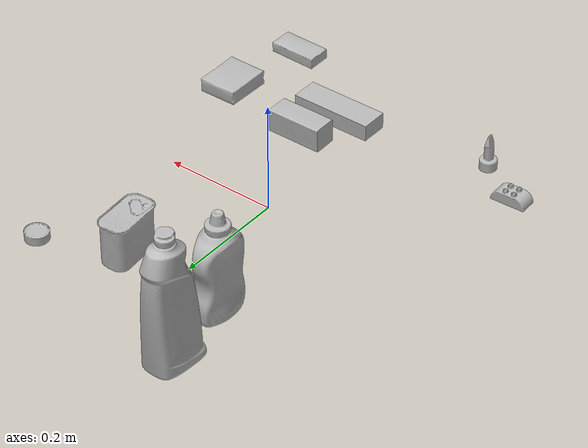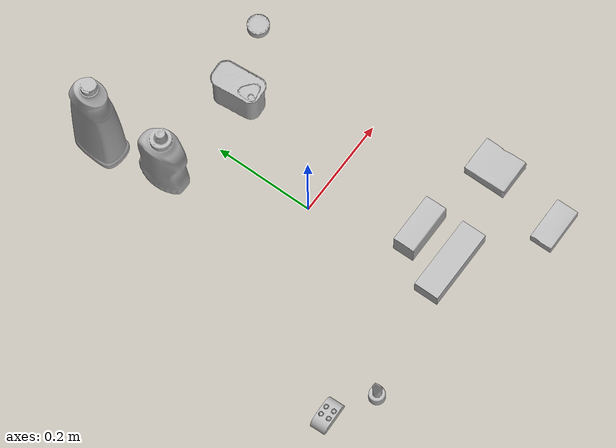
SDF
<?xml version="1.0" ?>
<sdf version="1.4">
  <world name="default">
    <light name="light1" type="point">
      <pose>0 0 1 0 0 0</pose>
      <diffuse>3 3 3 1</diffuse>
      <specular>3 3 3 1</specular>
    </light>
    <light name="light2" type="point">
      <pose>0 0.5 2 0 0 0</pose>
      <diffuse>1 1 1 1</diffuse>
      <specular>1 1 1 1</specular>
    </light>
    <light name="light3" type="point">
      <pose>0 0.5 2 0 0 0</pose>
      <diffuse>3 3 3 1</diffuse>
      <specular>3 3 3 1</specular>
    </light>
    <scene>
      <ambient>0.7 0.7 0.7</ambient>
    </scene>
    <model name="bottle1">
      <link name="link_bottle1">
        <collision name="default">
          <geometry>
            <mesh>
              <uri>model://bleach_cleanser/collision_meshes/collision.obj</uri>
              <scale>1.0 1.0 1.0</scale>
            </mesh>
          </geometry>
          <surface>
            <friction>
              <ode>
                <mu>0.5</mu>
                <mu2>0.5</mu2>
              </ode>
            </friction>
          </surface>
        </collision>
        <visual name="default">
          <geometry>
            <mesh>
              <uri>model://bleach_cleanser/visual_meshes/visual.dae</uri>
              <scale>1.0 1.0 1.0</scale>
            </mesh>
          </geometry>
        </visual>
        <inertial>
          <mass>0.5324875712394714</mass>
          <pose>0.00012193183647468686 0.0037838825955986977 -0.024421609938144684 -0.07381669869164166 0.0004201168944593395 -0.0068750469260774934</pose>
          <inertia>
            <ixx>0.0025916947</ixx>
            <iyy>0.0024150796</iyy>
            <izz>0.00044311245</izz>
            <ixy>0</ixy>
            <ixz>0</ixz>
            <iyz>0</iyz>
          </inertia>
        </inertial>
      </link>
      <pose>-0.11983887851238251 0.3798663318157196 0.12578420341014862 -0.00020535181226519978 1.2286523318519452e-05 -0.041023421182318165</pose>
    </model>
    <model name="bottle2">
      <link name="link_bottle2">
        <collision name="default">
          <geometry>
            <mesh>
              <uri>model://mustard_bottle/collision_meshes/collision.obj</uri>
              <scale>1.0 1.0 1.0</scale>
            </mesh>
          </geometry>
          <surface>
            <friction>
              <ode>
                <mu>0.5</mu>
                <mu2>0.5</mu2>
              </ode>
            </friction>
          </surface>
        </collision>
        <visual name="default">
          <geometry>
            <mesh>
              <uri>model://mustard_bottle/visual_meshes/visual.dae</uri>
              <scale>1.0 1.0 1.0</scale>
            </mesh>
          </geometry>
        </visual>
        <inertial>
          <mass>0.7762566804885864</mass>
          <pose>0.0005032453336752951 -0.0001564739941386506 -0.01747579127550125 0.0004182320844136383 0.0009465775961192733 0.024853776391442105</pose>
          <inertia>
            <ixx>0.0021555587</ixx>
            <iyy>0.0018913207</iyy>
            <izz>0.00056809856</izz>
            <ixy>0</ixy>
            <ixz>0</ixz>
            <iyz>0</iyz>
          </inertia>
        </inertial>
      </link>
      <pose>-0.10156022012233734 0.2488217055797577 0.09611944109201431 0.007533589752585307 -0.007380329653130943 -0.028878939616926894</pose>
    </model>
    <model name="toy1">
      <link name="link_toy1">
        <collision name="default">
          <geometry>
            <mesh>
              <uri>model://e_toy_airplane/collision_meshes/collision.obj</uri>
              <scale>1.0 1.0 1.0</scale>
            </mesh>
          </geometry>
          <surface>
            <friction>
              <ode>
                <mu>0.5</mu>
                <mu2>0.5</mu2>
              </ode>
            </friction>
          </surface>
        </collision>
        <visual name="default">
          <geometry>
            <mesh>
              <uri>model://e_toy_airplane/visual_meshes/visual.dae</uri>
              <scale>1.0 1.0 1.0</scale>
            </mesh>
          </geometry>
        </visual>
        <inertial>
          <mass>0.01693064346909523</mass>
          <pose>0.00011740485206246376 -2.2482869098894298e-05 -0.011187203228473663 0.005518486263483037 0.009228306153066855 0.15041416456770357</pose>
          <inertia>
            <ixx>5.1674256e-06</ixx>
            <iyy>5.1145657e-06</iyy>
            <izz>1.5530146e-06</izz>
            <ixy>0</ixy>
            <ixz>0</ixz>
            <iyz>0</iyz>
          </inertia>
        </inertial>
      </link>
      <pose>-0.2199523001909256 -0.3099425733089447 0.033212218433618546 6.536531784593295e-05 -0.00016465365539616904 -0.06362451553230516</pose>
    </model>
    <model name="toy2">
      <link name="link_toy2">
        <collision name="default">
          <geometry>
            <mesh>
              <uri>model://a_lego_duplo/collision_meshes/collision.obj</uri>
              <scale>1.0 1.0 1.0</scale>
            </mesh>
          </geometry>
          <surface>
            <friction>
              <ode>
                <mu>0.5</mu>
                <mu2>0.5</mu2>
              </ode>
            </friction>
          </surface>
        </collision>
        <visual name="default">
          <geometry>
            <mesh>
              <uri>model://a_lego_duplo/visual_meshes/visual.dae</uri>
              <scale>1.0 1.0 1.0</scale>
            </mesh>
          </geometry>
        </visual>
        <inertial>
          <mass>0.026311658322811127</mass>
          <pose>-0.000113377594971098 0.00018517566786613315 0.0003692609607242048 -0.014117022075399962 -0.00012566465015892618 6.142856652531641e-05</pose>
          <inertia>
            <ixx>3.3733654e-06</ixx>
            <iyy>7.557078e-06</iyy>
            <izz>9.361117e-06</izz>
            <ixy>0</ixy>
            <ixz>0</ixz>
            <iyz>0</iyz>
          </inertia>
        </inertial>
      </link>
      <pose>-0.29999712109565735 -0.26006895303726196 0.012112000957131386 -5.456792043657208e-07 -9.289410842256068e-09 0.041929282188366335</pose>
    </model>
    <model name="can1">
      <link name="link_can1">
        <collision name="default">
          <geometry>
            <mesh>
              <uri>model://tuna_fish_can/collision_meshes/collision.obj</uri>
              <scale>0.5 0.5 0.5</scale>
            </mesh>
          </geometry>
          <surface>
            <friction>
              <ode>
                <mu>0.5</mu>
                <mu2>0.5</mu2>
              </ode>
            </friction>
          </surface>
        </collision>
        <visual name="default">
          <geometry>
            <mesh>
              <uri>model://tuna_fish_can/visual_meshes/visual.dae</uri>
              <scale>0.5 0.5 0.5</scale>
            </mesh>
          </geometry>
        </visual>
        <inertial>
          <mass>0.025987863540649414</mass>
          <pose>-2.0361601855256595e-05 -7.256298886204604e-06 -0.0005269025568850338 -0.0017944787689317097 0.0001716279666079131 0.24054509142506303</pose>
          <inertia>
            <ixx>3.5135977e-06</ixx>
            <iyy>3.4989534e-06</iyy>
            <izz>6.0122675e-06</izz>
            <ixy>0</ixy>
            <ixz>0</ixz>
            <iyz>0</iyz>
          </inertia>
        </inertial>
      </link>
      <pose>0.2399759590625763 0.2900238037109375 0.008519998751580715 1.758176630593144e-08 3.7961274094759e-09 -0.041076701616804705</pose>
    </model>
    <model name="can2">
      <link name="link_can2">
        <collision name="default">
          <geometry>
            <mesh>
              <uri>model://potted_meat_can/collision_meshes/collision.obj</uri>
              <scale>1.0 1.0 1.0</scale>
            </mesh>
          </geometry>
          <surface>
            <friction>
              <ode>
                <mu>0.5</mu>
                <mu2>0.5</mu2>
              </ode>
            </friction>
          </surface>
        </collision>
        <visual name="default">
          <geometry>
            <mesh>
              <uri>model://potted_meat_can/visual_meshes/visual.dae</uri>
              <scale>1.0 1.0 1.0</scale>
            </mesh>
          </geometry>
        </visual>
        <inertial>
          <mass>0.2732236087322235</mass>
          <pose>0.00022888141393195838 -5.989111741655506e-05 -0.0006367441383190453 -0.028093326615163196 -0.007232604646238421 0.015406262399643026</pose>
          <inertia>
            <ixx>0.0003514736</ixx>
            <iyy>0.00021354685</iyy>
            <izz>0.00025563012</izz>
            <ixy>0</ixy>
            <ixz>0</ixz>
            <iyz>0</iyz>
          </inertia>
        </inertial>
      </link>
      <pose>0.0998983383178711 0.22999799251556396 0.04212798923254013 2.804905357045882e-08 -5.011921340175089e-07 0.07386909351445387</pose>
    </model>
    <model name="box1">
      <link name="link_box1">
        <collision name="default">
          <geometry>
            <mesh>
              <uri>model://gelatin_box/collision_meshes/collision.obj</uri>
              <scale>1.0 1.0 1.0</scale>
            </mesh>
          </geometry>
          <surface>
            <friction>
              <ode>
                <mu>0.5</mu>
                <mu2>0.5</mu2>
              </ode>
            </friction>
          </surface>
        </collision>
        <visual name="default">
          <geometry>
            <mesh>
              <uri>model://gelatin_box/visual_meshes/visual.dae</uri>
              <scale>1.0 1.0 1.0</scale>
            </mesh>
          </geometry>
        </visual>
        <inertial>
          <mass>0.14974145591259003</mass>
          <pose>0.0004319618456065655 0.00011156871914863586 -0.0003640321083366871 -0.0010503719798216618 -0.004755819622564704 0.01644055760929568</pose>
          <inertia>
            <ixx>0.00010570526</ixx>
            <iyy>7.550471e-05</iyy>
            <izz>0.00016090693</izz>
            <ixy>0</ixy>
            <ixz>0</ixz>
            <iyz>0</iyz>
          </inertia>
        </inertial>
      </link>
      <pose>0.25995129346847534 -0.23007158935070038 0.015168316662311554 0.005597515573077336 -0.007304554352424519 5.827081875914496e-06</pose>
    </model>
    <model name="box2">
      <link name="link_box2">
        <collision name="default">
          <geometry>
            <mesh>
              <uri>model://sugar_box/collision_meshes/collision.obj</uri>
              <scale>0.5 0.5 0.5</scale>
            </mesh>
          </geometry>
          <surface>
            <friction>
              <ode>
                <mu>0.5</mu>
                <mu2>0.5</mu2>
              </ode>
            </friction>
          </surface>
        </collision>
        <visual name="default">
          <geometry>
            <mesh>
              <uri>model://sugar_box/visual_meshes/visual.dae</uri>
              <scale>0.5 0.5 0.5</scale>
            </mesh>
          </geometry>
        </visual>
        <inertial>
          <mass>0.07143953442573547</mass>
          <pose>0.0005171863595023751 1.924554817378521e-05 -0.00018182402709499002 -0.0004046263588767038 0.0010506634057764815 0.0026153785560837986</pose>
          <inertia>
            <ixx>1.4880804e-05</ixx>
            <iyy>4.8097805e-05</iyy>
            <izz>5.757883e-05</izz>
            <ixy>0</ixy>
            <ixz>0</ixz>
            <iyz>0</iyz>
          </inertia>
        </inertial>
      </link>
      <pose>0.22952277958393097 -0.3801334500312805 0.011399304494261742 0.0007749875191658855 -0.023433189754877508 0.000234946798852029</pose>
    </model>
    <model name="box3">
      <link name="link_box3">
        <collision name="default">
          <geometry>
            <mesh>
              <uri>model://jenga/collision_meshes/collision.obj</uri>
              <scale>1.0 1.0 1.0</scale>
            </mesh>
          </geometry>
          <surface>
            <friction>
              <ode>
                <mu>0.5</mu>
                <mu2>0.5</mu2>
              </ode>
            </friction>
          </surface>
        </collision>
        <visual name="default">
          <geometry>
            <mesh>
              <uri>model://jenga/visual_meshes/visual.dae</uri>
              <scale>1.0 1.0 1.0</scale>
            </mesh>
          </geometry>
        </visual>
        <inertial>
          <mass>0.2564851939678192</mass>
          <pose>-2.502855807051674e-07 -0.00010250010382151231 -4.0923401684267446e-05 0.0 -7.342154049184251e-07 0.0</pose>
          <inertia>
            <ixx>7.097568e-05</ixx>
            <iyy>0.00048092927</iyy>
            <izz>0.0005134329</izz>
            <ixy>0</ixy>
            <ixz>0</ixz>
            <iyz>0</iyz>
          </inertia>
        </inertial>
      </link>
      <pose>0.06000050902366638 -0.2698974907398224 0.014999995008111 -9.382083862111397e-11 7.692051374201609e-10 -1.4078528920439582e-07</pose>
    </model>
    <model name="box4">
      <link name="link_box4">
        <collision name="default">
          <geometry>
            <mesh>
              <uri>model://wood_block/collision_meshes/collision.obj</uri>
              <scale>0.5 0.5 0.5</scale>
            </mesh>
          </geometry>
          <surface>
            <friction>
              <ode>
                <mu>0.5</mu>
                <mu2>0.5</mu2>
              </ode>
            </friction>
          </surface>
        </collision>
        <visual name="default">
          <geometry>
            <mesh>
              <uri>model://wood_block/visual_meshes/visual.dae</uri>
              <scale>0.5 0.5 0.5</scale>
            </mesh>
          </geometry>
        </visual>
        <inertial>
          <mass>0.2543213665485382</mass>
          <pose>-2.906657982748584e-06 -0.000285404734313488 0.00013204291462898254 -0.05220794665887619 -0.0051926956484831775 -0.006861378561045436</pose>
          <inertia>
            <ixx>8.508011e-05</ixx>
            <iyy>0.00026876814</iyy>
            <izz>0.00026776275</izz>
            <ixy>0</ixy>
            <ixz>0</ixz>
            <iyz>0</iyz>
          </inertia>
        </inertial>
      </link>
      <pose>0.07994168251752853 -0.18943442404270172 0.022629259154200554 -0.0052085867899833264 0.005718729182750714 0.005304641378274426</pose>
    </model>
  </world>
</sdf>
